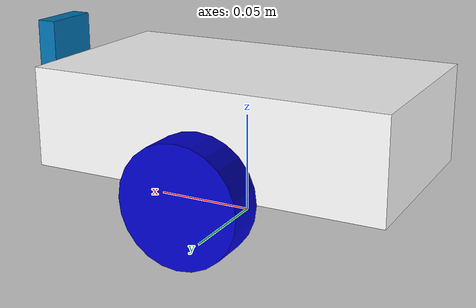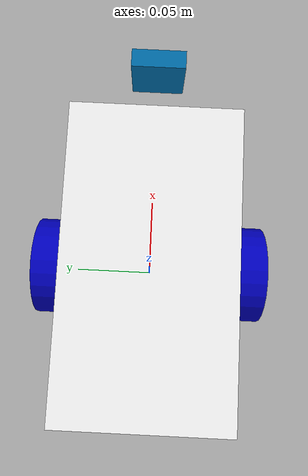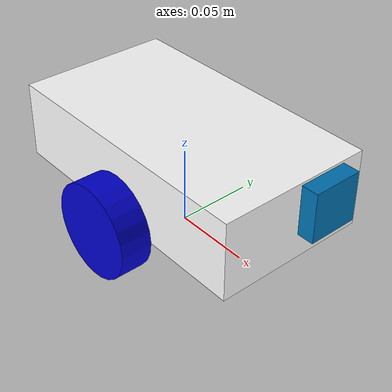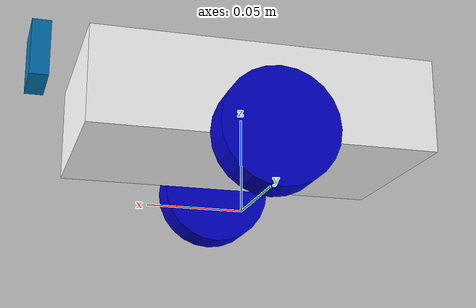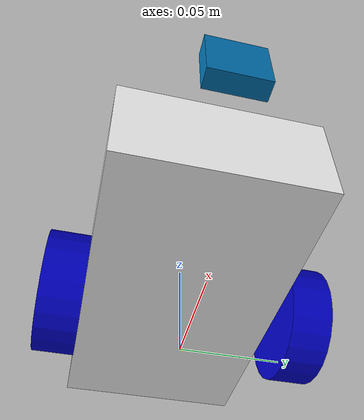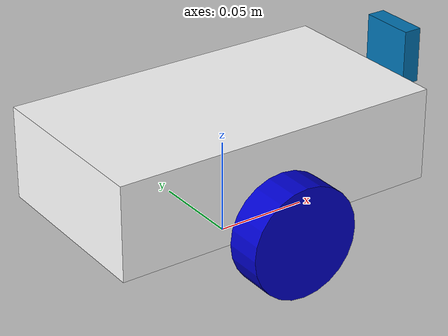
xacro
<?xml version="1.0"?>
<robot name="gpg3" xmlns:xacro="http://www.ros.org/wiki/xacro">

  <material name="blue">
    <color rgba="0 0 .8 1"/>
  </material>

  <material name="white">
    <color rgba="1 1 1 1"/>
  </material>

  <!-- 'base_footprint' is the ground link -->
  <link name="base_footprint"/>

  <joint name="base_joint" type="fixed">
    <parent link="base_footprint"/>
    <child link="base_link"/>
    <origin xyz="0 0 0.05" rpy="0 0 0"/>
  </joint>

  <link name="base_link">
    <visual>
      <geometry>
        <box size="0.18 0.10 0.05"/>
      </geometry>
      <material name="white"/>
    </visual>
    <collision>
      <geometry>
        <box size="0.18 0.10 0.05"/>
      </geometry>
	</collision>
    <inertial>
      <origin xyz="-0.02 0 0" rpy="0 0 0"/>
      <mass value="0.534"/>
      <inertia ixx="1.0e-03" ixy="0" ixz="0" iyy="1.0e-03" iyz="0" izz="2.45e-03" />
    </inertial>
  </link>

  <link name="left_wheel_link">
    <visual>
      <origin rpy="1.57075 0 0"/>
      <geometry>
        <cylinder length="0.02" radius="0.03"/>
      </geometry>
      <material name="blue"/>
    </visual>
    <collision>
      <origin rpy="1.57075 0 0"/>
      <geometry>
        <cylinder length="0.02" radius="0.03"/>
      </geometry>
	</collision>
    <inertial>
      <mass value="0.032" />
      <inertia ixx="1.74e-05" ixy="0" ixz="0" iyy="1.05e-05" iyz="0" izz="1.05e-05" />
    </inertial>
  </link>

  <joint name="left_wheel" type="continuous">
    <parent link="base_link"/>
    <child link="left_wheel_link"/>
    <origin xyz="0 0.06 -0.025"/>
    <axis xyz="0 1 0"/>
  </joint>

  <link name="right_wheel_link">
    <visual>
      <origin rpy="1.57075 0 0"/>
      <geometry>
        <cylinder length="0.02" radius="0.03"/>
      </geometry>
      <material name="blue"/>
    </visual>
    <collision>
      <origin rpy="1.57075 0 0"/>
      <geometry>
        <cylinder length="0.02" radius="0.03"/>
      </geometry>
      <material name="blue"/>
    </collision>
    <inertial>
      <origin xyz="0 0 0" />
      <mass value="0.032" />
      <inertia ixx="1.74e-05" ixy="0" ixz="0" iyy="1.05e-05" iyz="0" izz="1.05e-05" />
    </inertial>
  </link>

  <joint name="right_wheel" type="continuous">
    <parent link="base_link"/>
    <child link="right_wheel_link"/>
    <origin xyz="0 -0.06 -0.025"/>
    <axis xyz="0 1 0"/>
  </joint>

  <link name="camera_link">
    <visual>
      <geometry>
        <box size="0.03 0.03 0.01"/>
      </geometry>
    </visual>
    <collision>
      <geometry>
        <box size="0.03 0.03 0.01"/>
      </geometry>
    </collision>
	<inertial>
	  <mass value="0.178" />
	  <inertia ixx="1.10e-04" ixy="-1.56e-04" ixz="-3.12e-04" iyy="1.85e-04" iyz="-2.23e-04" izz="2.21e-04" />
	</inertial>
  </link>

  <joint name="servo" type="revolute">
    <axis xyz="0 -1 0"/>
    <limit effort="1000.0" lower="-1" upper="1" velocity="0.5"/>
    <parent link="base_link"/>
    <child link="camera_link"/>
    <origin rpy="-1.57075 0 -1.57075" xyz="0.11 0 0.025"/>
  </joint>

  <!-- Gazebo plugin for ROS Control -->
  <gazebo>
    <plugin name="gazebo_ros_control" filename="libgazebo_ros_control.so">
      <robotNamespace>/</robotNamespace>
    </plugin>
  </gazebo>

</robot>
